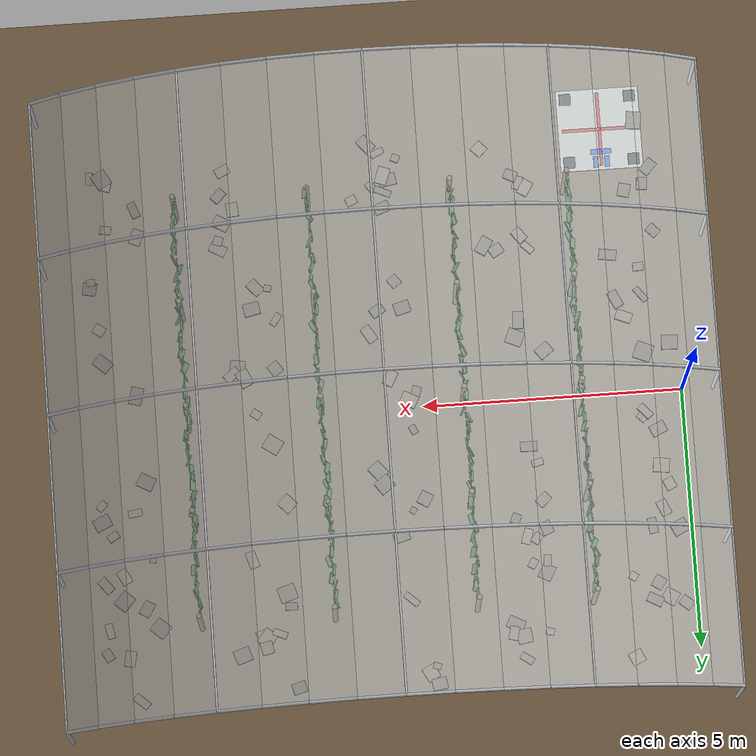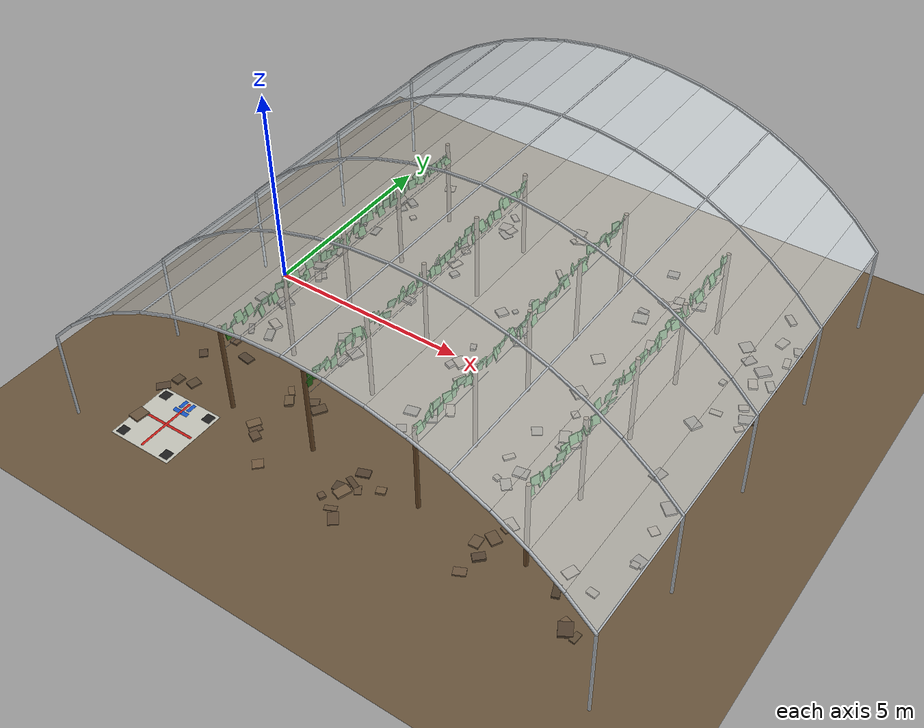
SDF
<?xml version="1.0"?>
<sdf version="1.6">
  <world name="vineyard">

    <include><uri>model://sun</uri></include>

    <model name="ground_plane">
      <static>true</static>
      <link name="link">
        <collision name="collision">
          <geometry><plane><normal>0 0 1</normal><size>120 120</size></plane></geometry>
          <surface><friction><ode><mu>1.1</mu><mu2>1.1</mu2></ode></friction></surface>
        </collision>
        <visual name="visual">
          <geometry><plane><normal>0 0 1</normal><size>120 120</size></plane></geometry>
          <material>
            <ambient>0.22 0.18 0.13 1</ambient>
            <diffuse>0.42 0.34 0.24 1</diffuse>
          </material>
        </visual>
      </link>
    </model>

    <include><uri>model://trellis</uri><pose>0 0 0 0 0 0</pose></include>
    <include><uri>model://dirt_track</uri><pose>0 0 0 0 0 0</pose></include>
    <include><uri>model://polytunnel</uri><pose>0 0 0 0 0 0</pose></include>
    <include><uri>model://start_pad</uri><pose>0 0 0 0 0 0</pose></include>

    <!-- Creates/removes fixed joints between links at runtime. Per cluster the
         demo uses it three times: hang it on the wire, clamp it in the cutter,
         and release it over the crate. -->
    <plugin name="ros_link_attacher_plugin" filename="libgazebo_ros_link_attacher.so"/>

    <model name="harvest_cam">
      <static>true</static>
      <pose>-6.000 0.000 3.400 0.000 0.227 0.000</pose>
      <link name="link">
        <sensor name="cam" type="camera">
          <camera>
            <horizontal_fov>1.15</horizontal_fov>
            <image><width>1280</width><height>720</height><format>R8G8B8</format></image>
            <clip><near>0.05</near><far>120</far></clip>
          </camera>
          <always_on>1</always_on>
          <update_rate>30</update_rate>
          <visualize>false</visualize>
          <plugin name="harvest_cam_plugin" filename="libgazebo_ros_camera.so">
            <cameraName>harvest_cam</cameraName>
            <imageTopicName>image_raw</imageTopicName>
            <cameraInfoTopicName>camera_info</cameraInfoTopicName>
            <frameName>harvest_cam_link</frameName>
            <updateRate>30.0</updateRate>
          </plugin>
        </sensor>
      </link>
    </model>

    <physics type="ode">
      <max_step_size>0.001</max_step_size>
      <real_time_update_rate>1000</real_time_update_rate>
      <ode>
        <solver><type>quick</type><iters>60</iters><sor>1.3</sor></solver>
        <constraints>
          <cfm>0.0</cfm><erp>0.2</erp>
          <contact_max_correcting_vel>100</contact_max_correcting_vel>
          <contact_surface_layer>0.001</contact_surface_layer>
        </constraints>
      </ode>
    </physics>

    <scene>
      <ambient>0.55 0.55 0.55 1</ambient>
      <background>0.62 0.74 0.88 1</background>
      <shadows>true</shadows>
    </scene>

    <gui>
      <camera name="user_camera">
        <pose>-6.000 0.000 3.400 0.000 0.227 0.000</pose>
      </camera>
    </gui>

  </world>
</sdf>

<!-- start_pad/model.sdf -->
<sdf version="1.6">
  <model name="start_pad">
    <static>true</static>
    <link name="link">
      <visual name="pad">
        <pose>1.2000 -5.2000 0.0040 0 0 1.5708</pose>
        <cast_shadows>false</cast_shadows>
        <geometry><box><size>1.600 1.600 0.008</size></box></geometry>
        <material><ambient>0.78 0.78 0.74 1</ambient><diffuse>0.78 0.78 0.74 1</diffuse></material>
      </visual>
      <visual name="cross_x">
        <pose>1.2000 -5.2000 0.0060 0 0 1.5708</pose>
        <cast_shadows>false</cast_shadows>
        <geometry><box><size>1.440 0.060 0.008</size></box></geometry>
        <material><ambient>0.80 0.12 0.10 1</ambient><diffuse>0.80 0.12 0.10 1</diffuse></material>
      </visual>
      <visual name="cross_y">
        <pose>1.2000 -5.2000 0.0060 0 0 1.5708</pose>
        <cast_shadows>false</cast_shadows>
        <geometry><box><size>0.060 1.440 0.008</size></box></geometry>
        <material><ambient>0.80 0.12 0.10 1</ambient><diffuse>0.80 0.12 0.10 1</diffuse></material>
      </visual>
      <visual name="arrow">
        <pose>1.2000 -4.7600 0.0060 0 0 1.5708</pose>
        <cast_shadows>false</cast_shadows>
        <geometry><box><size>0.100 0.400 0.008</size></box></geometry>
        <material><ambient>0.10 0.35 0.80 1</ambient><diffuse>0.10 0.35 0.80 1</diffuse></material>
      </visual>
      <visual name="arrow_l">
        <pose>1.0900 -4.5600 0.0060 0 0 1.5708</pose>
        <cast_shadows>false</cast_shadows>
        <geometry><box><size>0.220 0.090 0.008</size></box></geometry>
        <material><ambient>0.10 0.35 0.80 1</ambient><diffuse>0.10 0.35 0.80 1</diffuse></material>
      </visual>
      <visual name="arrow_r">
        <pose>1.3100 -4.5600 0.0060 0 0 1.5708</pose>
        <cast_shadows>false</cast_shadows>
        <geometry><box><size>0.220 0.090 0.008</size></box></geometry>
        <material><ambient>0.10 0.35 0.80 1</ambient><diffuse>0.10 0.35 0.80 1</diffuse></material>
      </visual>
      <visual name="corner_0">
        <pose>0.5760 -5.8240 0.0060 0 0 1.5708</pose>
        <cast_shadows>false</cast_shadows>
        <geometry><box><size>0.220 0.220 0.008</size></box></geometry>
        <material><ambient>0.12 0.12 0.12 1</ambient><diffuse>0.12 0.12 0.12 1</diffuse></material>
      </visual>
      <visual name="corner_1">
        <pose>0.5760 -4.5760 0.0060 0 0 1.5708</pose>
        <cast_shadows>false</cast_shadows>
        <geometry><box><size>0.220 0.220 0.008</size></box></geometry>
        <material><ambient>0.12 0.12 0.12 1</ambient><diffuse>0.12 0.12 0.12 1</diffuse></material>
      </visual>
      <visual name="corner_2">
        <pose>1.8240 -5.8240 0.0060 0 0 1.5708</pose>
        <cast_shadows>false</cast_shadows>
        <geometry><box><size>0.220 0.220 0.008</size></box></geometry>
        <material><ambient>0.12 0.12 0.12 1</ambient><diffuse>0.12 0.12 0.12 1</diffuse></material>
      </visual>
      <visual name="corner_3">
        <pose>1.8240 -4.5760 0.0060 0 0 1.5708</pose>
        <cast_shadows>false</cast_shadows>
        <geometry><box><size>0.220 0.220 0.008</size></box></geometry>
        <material><ambient>0.12 0.12 0.12 1</ambient><diffuse>0.12 0.12 0.12 1</diffuse></material>
      </visual>
    </link>
  </model>
</sdf>
